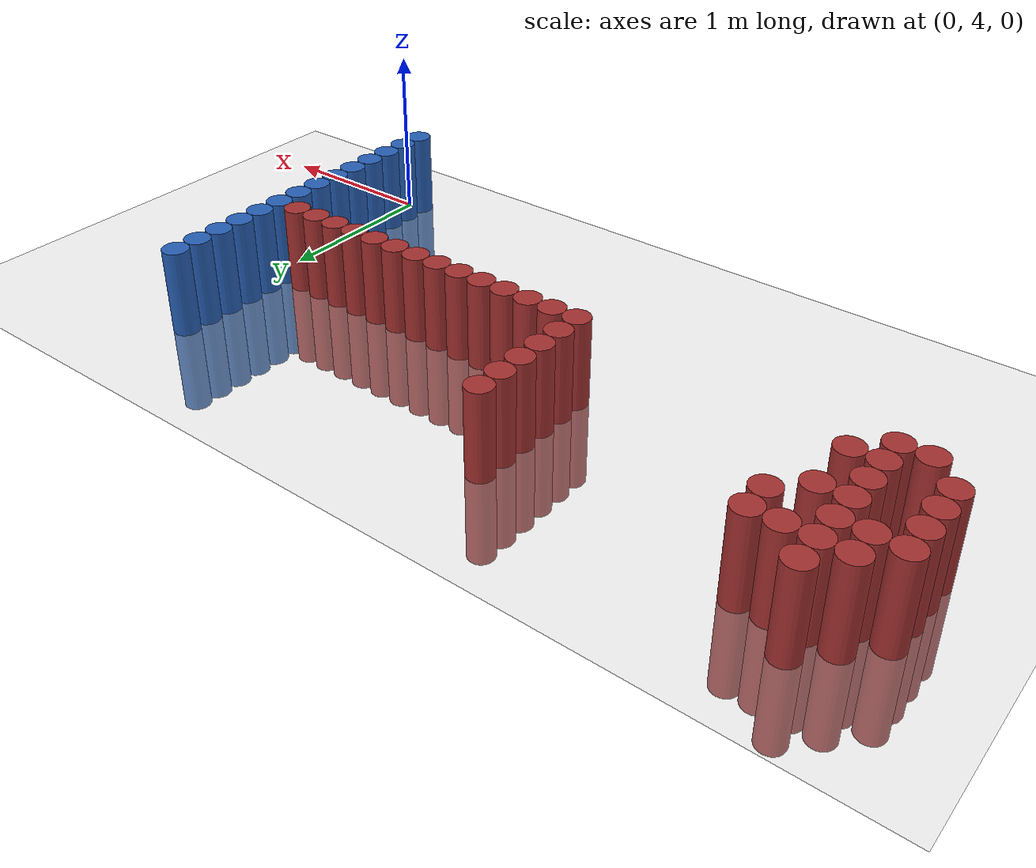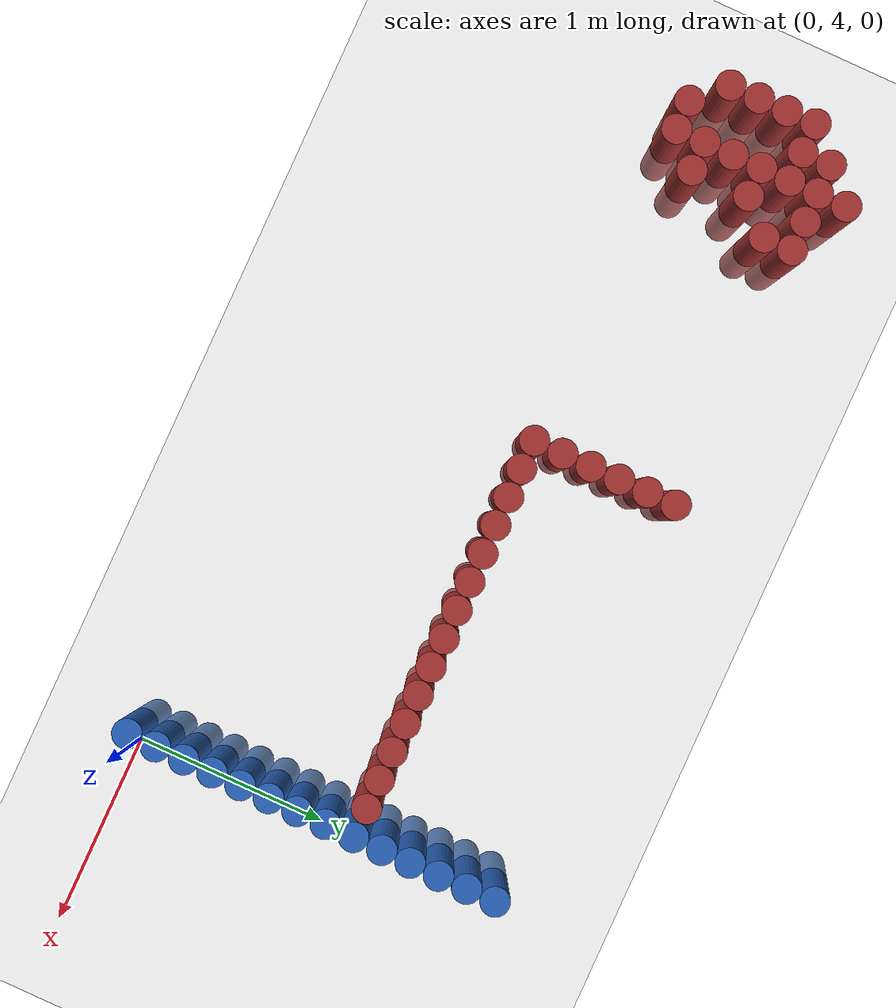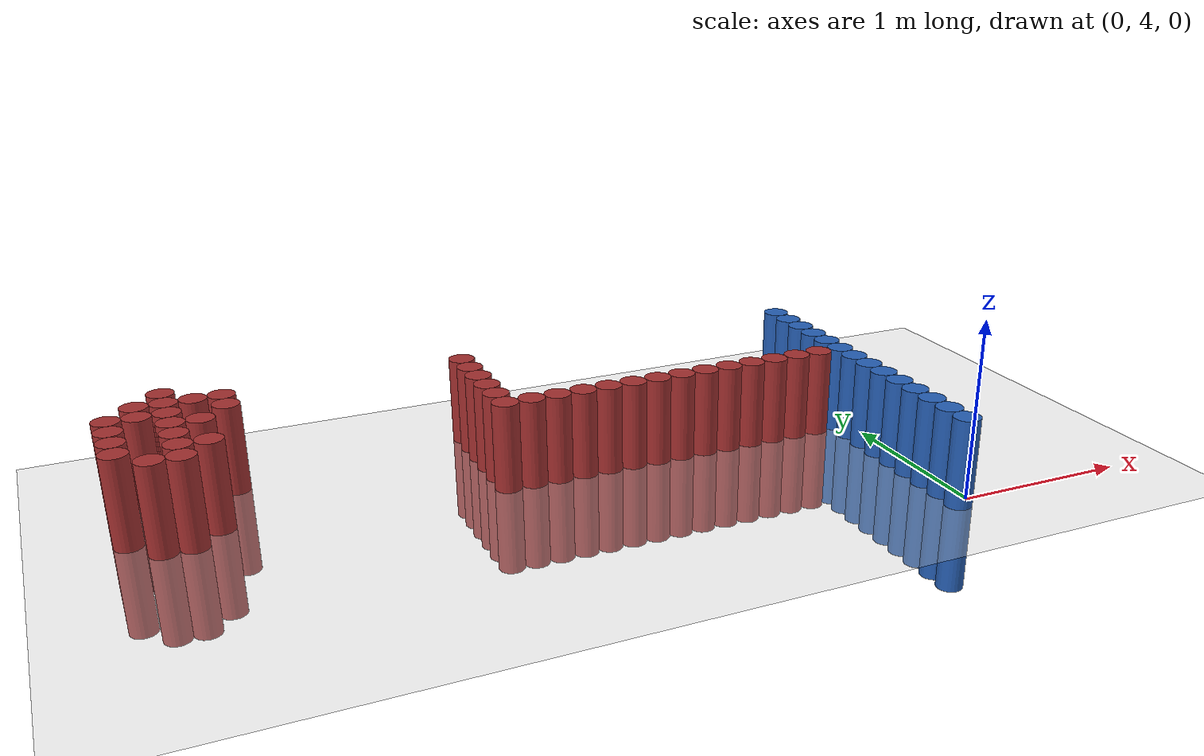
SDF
<sdf version="1.6">
 <world name="default">
  <model name="ground_plane">
   <static>1</static>
   <link name="link">
    <collision name="collision">
     <geometry><plane><normal>0 0 1</normal><size>100 100</size></plane></geometry>
     <surface><friction><ode><mu>100</mu><mu2>50</mu2></ode></friction></surface>
    </collision>
    <visual name="visual">
     <cast_shadows>0</cast_shadows>
     <geometry><plane><normal>0 0 1</normal><size>100 100</size></plane></geometry>
     <material>
      <script><uri>file://media/materials/scripts/gazebo.material</uri><name>Gazebo/Grey</name></script>
     </material>
    </visual>
   </link>
  </model>
  <model name="unit_cylinder_109">
   <static>1</static>
   <pose>-0.075000 3.975000 0.000000 0.000000 0.000000 0.000000</pose>
   <link name="link">
    <inertial>
     <mass>1</mass>
     <inertia><ixx>0.145833</ixx><ixy>0</ixy><ixz>0</ixz><iyy>0.145833</iyy><iyz>0</iyz><izz>0.125</izz></inertia>
    </inertial>
    <collision name="collision">
     <geometry><cylinder><radius>0.075000</radius><length>1</length></cylinder></geometry>
    </collision>
    <visual name="visual">
     <geometry><cylinder><radius>0.075000</radius><length>1</length></cylinder></geometry>
     <material>
      <ambient>0.152000 0.379000 0.720000 1</ambient>
      <diffuse>0.152000 0.379000 0.720000 1</diffuse>
     </material>
     <material>
      <script><name>Gazebo/Grey</name><uri>file://media/materials/scripts/gazebo.material</uri></script>
     </material>
    </visual>
   </link>
  </model>
  <model name="unit_cylinder_111">
   <static>1</static>
   <pose>-0.075000 4.125000 0.000000 0.000000 0.000000 0.000000</pose>
   <link name="link">
    <inertial>
     <mass>1</mass>
     <inertia><ixx>0.145833</ixx><ixy>0</ixy><ixz>0</ixz><iyy>0.145833</iyy><iyz>0</iyz><izz>0.125</izz></inertia>
    </inertial>
    <collision name="collision">
     <geometry><cylinder><radius>0.075000</radius><length>1</length></cylinder></geometry>
    </collision>
    <visual name="visual">
     <geometry><cylinder><radius>0.075000</radius><length>1</length></cylinder></geometry>
     <material>
      <ambient>0.152000 0.379000 0.720000 1</ambient>
      <diffuse>0.152000 0.379000 0.720000 1</diffuse>
     </material>
     <material>
      <script><name>Gazebo/Grey</name><uri>file://media/materials/scripts/gazebo.material</uri></script>
     </material>
    </visual>
   </link>
  </model>
  <model name="unit_cylinder_113">
   <static>1</static>
   <pose>-0.075000 4.275000 0.000000 0.000000 0.000000 0.000000</pose>
   <link name="link">
    <inertial>
     <mass>1</mass>
     <inertia><ixx>0.145833</ixx><ixy>0</ixy><ixz>0</ixz><iyy>0.145833</iyy><iyz>0</iyz><izz>0.125</izz></inertia>
    </inertial>
    <collision name="collision">
     <geometry><cylinder><radius>0.075000</radius><length>1</length></cylinder></geometry>
    </collision>
    <visual name="visual">
     <geometry><cylinder><radius>0.075000</radius><length>1</length></cylinder></geometry>
     <material>
      <ambient>0.152000 0.379000 0.720000 1</ambient>
      <diffuse>0.152000 0.379000 0.720000 1</diffuse>
     </material>
     <material>
      <script><name>Gazebo/Grey</name><uri>file://media/materials/scripts/gazebo.material</uri></script>
     </material>
    </visual>
   </link>
  </model>
  <model name="unit_cylinder_115">
   <static>1</static>
   <pose>-0.075000 4.425000 0.000000 0.000000 0.000000 0.000000</pose>
   <link name="link">
    <inertial>
     <mass>1</mass>
     <inertia><ixx>0.145833</ixx><ixy>0</ixy><ixz>0</ixz><iyy>0.145833</iyy><iyz>0</iyz><izz>0.125</izz></inertia>
    </inertial>
    <collision name="collision">
     <geometry><cylinder><radius>0.075000</radius><length>1</length></cylinder></geometry>
    </collision>
    <visual name="visual">
     <geometry><cylinder><radius>0.075000</radius><length>1</length></cylinder></geometry>
     <material>
      <ambient>0.152000 0.379000 0.720000 1</ambient>
      <diffuse>0.152000 0.379000 0.720000 1</diffuse>
     </material>
     <material>
      <script><name>Gazebo/Grey</name><uri>file://media/materials/scripts/gazebo.material</uri></script>
     </material>
    </visual>
   </link>
  </model>
  <model name="unit_cylinder_117">
   <static>1</static>
   <pose>-0.075000 4.575000 0.000000 0.000000 0.000000 0.000000</pose>
   <link name="link">
    <inertial>
     <mass>1</mass>
     <inertia><ixx>0.145833</ixx><ixy>0</ixy><ixz>0</ixz><iyy>0.145833</iyy><iyz>0</iyz><izz>0.125</izz></inertia>
    </inertial>
    <collision name="collision">
     <geometry><cylinder><radius>0.075000</radius><length>1</length></cylinder></geometry>
    </collision>
    <visual name="visual">
     <geometry><cylinder><radius>0.075000</radius><length>1</length></cylinder></geometry>
     <material>
      <ambient>0.152000 0.379000 0.720000 1</ambient>
      <diffuse>0.152000 0.379000 0.720000 1</diffuse>
     </material>
     <material>
      <script><name>Gazebo/Grey</name><uri>file://media/materials/scripts/gazebo.material</uri></script>
     </material>
    </visual>
   </link>
  </model>
  <model name="unit_cylinder_119">
   <static>1</static>
   <pose>-0.075000 4.725000 0.000000 0.000000 0.000000 0.000000</pose>
   <link name="link">
    <inertial>
     <mass>1</mass>
     <inertia><ixx>0.145833</ixx><ixy>0</ixy><ixz>0</ixz><iyy>0.145833</iyy><iyz>0</iyz><izz>0.125</izz></inertia>
    </inertial>
    <collision name="collision">
     <geometry><cylinder><radius>0.075000</radius><length>1</length></cylinder></geometry>
    </collision>
    <visual name="visual">
     <geometry><cylinder><radius>0.075000</radius><length>1</length></cylinder></geometry>
     <material>
      <ambient>0.152000 0.379000 0.720000 1</ambient>
      <diffuse>0.152000 0.379000 0.720000 1</diffuse>
     </material>
     <material>
      <script><name>Gazebo/Grey</name><uri>file://media/materials/scripts/gazebo.material</uri></script>
     </material>
    </visual>
   </link>
  </model>
  <model name="unit_cylinder_121">
   <static>1</static>
   <pose>-0.075000 4.875000 0.000000 0.000000 0.000000 0.000000</pose>
   <link name="link">
    <inertial>
     <mass>1</mass>
     <inertia><ixx>0.145833</ixx><ixy>0</ixy><ixz>0</ixz><iyy>0.145833</iyy><iyz>0</iyz><izz>0.125</izz></inertia>
    </inertial>
    <collision name="collision">
     <geometry><cylinder><radius>0.075000</radius><length>1</length></cylinder></geometry>
    </collision>
    <visual name="visual">
     <geometry><cylinder><radius>0.075000</radius><length>1</length></cylinder></geometry>
     <material>
      <ambient>0.152000 0.379000 0.720000 1</ambient>
      <diffuse>0.152000 0.379000 0.720000 1</diffuse>
     </material>
     <material>
      <script><name>Gazebo/Grey</name><uri>file://media/materials/scripts/gazebo.material</uri></script>
     </material>
    </visual>
   </link>
  </model>
  <model name="unit_cylinder_123">
   <static>1</static>
   <pose>-0.075000 5.025000 0.000000 0.000000 0.000000 0.000000</pose>
   <link name="link">
    <inertial>
     <mass>1</mass>
     <inertia><ixx>0.145833</ixx><ixy>0</ixy><ixz>0</ixz><iyy>0.145833</iyy><iyz>0</iyz><izz>0.125</izz></inertia>
    </inertial>
    <collision name="collision">
     <geometry><cylinder><radius>0.075000</radius><length>1</length></cylinder></geometry>
    </collision>
    <visual name="visual">
     <geometry><cylinder><radius>0.075000</radius><length>1</length></cylinder></geometry>
     <material>
      <ambient>0.152000 0.379000 0.720000 1</ambient>
      <diffuse>0.152000 0.379000 0.720000 1</diffuse>
     </material>
     <material>
      <script><name>Gazebo/Grey</name><uri>file://media/materials/scripts/gazebo.material</uri></script>
     </material>
    </visual>
   </link>
  </model>
  <model name="unit_cylinder_280">
   <static>1</static>
   <pose>-4.125000 5.325000 0.000000 0.000000 0.000000 0.000000</pose>
   <link name="link">
    <inertial>
     <mass>1</mass>
     <inertia><ixx>0.145833</ixx><ixy>0</ixy><ixz>0</ixz><iyy>0.145833</iyy><iyz>0</iyz><izz>0.125</izz></inertia>
    </inertial>
    <collision name="collision">
     <geometry><cylinder><radius>0.075000</radius><length>1</length></cylinder></geometry>
    </collision>
    <visual name="visual">
     <geometry><cylinder><radius>0.075000</radius><length>1</length></cylinder></geometry>
     <material>
      <ambient>0.648000 0.192000 0.192000 1</ambient>
      <diffuse>0.648000 0.192000 0.192000 1</diffuse>
     </material>
     <material>
      <script><name>Gazebo/Grey</name><uri>file://media/materials/scripts/gazebo.material</uri></script>
     </material>
    </visual>
   </link>
  </model>
  <model name="unit_cylinder_281">
   <static>1</static>
   <pose>-4.125000 5.475000 0.000000 0.000000 0.000000 0.000000</pose>
   <link name="link">
    <inertial>
     <mass>1</mass>
     <inertia><ixx>0.145833</ixx><ixy>0</ixy><ixz>0</ixz><iyy>0.145833</iyy><iyz>0</iyz><izz>0.125</izz></inertia>
    </inertial>
    <collision name="collision">
     <geometry><cylinder><radius>0.075000</radius><length>1</length></cylinder></geometry>
    </collision>
    <visual name="visual">
     <geometry><cylinder><radius>0.075000</radius><length>1</length></cylinder></geometry>
     <material>
      <ambient>0.648000 0.192000 0.192000 1</ambient>
      <diffuse>0.648000 0.192000 0.192000 1</diffuse>
     </material>
     <material>
      <script><name>Gazebo/Grey</name><uri>file://media/materials/scripts/gazebo.material</uri></script>
     </material>
    </visual>
   </link>
  </model>
  <model name="unit_cylinder_282">
   <static>1</static>
   <pose>-4.125000 5.625000 0.000000 0.000000 0.000000 0.000000</pose>
   <link name="link">
    <inertial>
     <mass>1</mass>
     <inertia><ixx>0.145833</ixx><ixy>0</ixy><ixz>0</ixz><iyy>0.145833</iyy><iyz>0</iyz><izz>0.125</izz></inertia>
    </inertial>
    <collision name="collision">
     <geometry><cylinder><radius>0.075000</radius><length>1</length></cylinder></geometry>
    </collision>
    <visual name="visual">
     <geometry><cylinder><radius>0.075000</radius><length>1</length></cylinder></geometry>
     <material>
      <ambient>0.648000 0.192000 0.192000 1</ambient>
      <diffuse>0.648000 0.192000 0.192000 1</diffuse>
     </material>
     <material>
      <script><name>Gazebo/Grey</name><uri>file://media/materials/scripts/gazebo.material</uri></script>
     </material>
    </visual>
   </link>
  </model>
  <model name="unit_cylinder_283">
   <static>1</static>
   <pose>-4.125000 5.775000 0.000000 0.000000 0.000000 0.000000</pose>
   <link name="link">
    <inertial>
     <mass>1</mass>
     <inertia><ixx>0.145833</ixx><ixy>0</ixy><ixz>0</ixz><iyy>0.145833</iyy><iyz>0</iyz><izz>0.125</izz></inertia>
    </inertial>
    <collision name="collision">
     <geometry><cylinder><radius>0.075000</radius><length>1</length></cylinder></geometry>
    </collision>
    <visual name="visual">
     <geometry><cylinder><radius>0.075000</radius><length>1</length></cylinder></geometry>
     <material>
      <ambient>0.648000 0.192000 0.192000 1</ambient>
      <diffuse>0.648000 0.192000 0.192000 1</diffuse>
     </material>
     <material>
      <script><name>Gazebo/Grey</name><uri>file://media/materials/scripts/gazebo.material</uri></script>
     </material>
    </visual>
   </link>
  </model>
  <model name="unit_cylinder_284">
   <static>1</static>
   <pose>-3.975000 5.175000 0.000000 0.000000 0.000000 0.000000</pose>
   <link name="link">
    <inertial>
     <mass>1</mass>
     <inertia><ixx>0.145833</ixx><ixy>0</ixy><ixz>0</ixz><iyy>0.145833</iyy><iyz>0</iyz><izz>0.125</izz></inertia>
    </inertial>
    <collision name="collision">
     <geometry><cylinder><radius>0.075000</radius><length>1</length></cylinder></geometry>
    </collision>
    <visual name="visual">
     <geometry><cylinder><radius>0.075000</radius><length>1</length></cylinder></geometry>
     <material>
      <ambient>0.648000 0.192000 0.192000 1</ambient>
      <diffuse>0.648000 0.192000 0.192000 1</diffuse>
     </material>
     <material>
      <script><name>Gazebo/Grey</name><uri>file://media/materials/scripts/gazebo.material</uri></script>
     </material>
    </visual>
   </link>
  </model>
  <model name="unit_cylinder_285">
   <static>1</static>
   <pose>-3.975000 5.775000 0.000000 0.000000 0.000000 0.000000</pose>
   <link name="link">
    <inertial>
     <mass>1</mass>
     <inertia><ixx>0.145833</ixx><ixy>0</ixy><ixz>0</ixz><iyy>0.145833</iyy><iyz>0</iyz><izz>0.125</izz></inertia>
    </inertial>
    <collision name="collision">
     <geometry><cylinder><radius>0.075000</radius><length>1</length></cylinder></geometry>
    </collision>
    <visual name="visual">
     <geometry><cylinder><radius>0.075000</radius><length>1</length></cylinder></geometry>
     <material>
      <ambient>0.648000 0.192000 0.192000 1</ambient>
      <diffuse>0.648000 0.192000 0.192000 1</diffuse>
     </material>
     <material>
      <script><name>Gazebo/Grey</name><uri>file://media/materials/scripts/gazebo.material</uri></script>
     </material>
    </visual>
   </link>
  </model>
  <model name="unit_cylinder_286">
   <static>1</static>
   <pose>-3.975000 5.925000 0.000000 0.000000 0.000000 0.000000</pose>
   <link name="link">
    <inertial>
     <mass>1</mass>
     <inertia><ixx>0.145833</ixx><ixy>0</ixy><ixz>0</ixz><iyy>0.145833</iyy><iyz>0</iyz><izz>0.125</izz></inertia>
    </inertial>
    <collision name="collision">
     <geometry><cylinder><radius>0.075000</radius><length>1</length></cylinder></geometry>
    </collision>
    <visual name="visual">
     <geometry><cylinder><radius>0.075000</radius><length>1</length></cylinder></geometry>
     <material>
      <ambient>0.648000 0.192000 0.192000 1</ambient>
      <diffuse>0.648000 0.192000 0.192000 1</diffuse>
     </material>
     <material>
      <script><name>Gazebo/Grey</name><uri>file://media/materials/scripts/gazebo.material</uri></script>
     </material>
    </visual>
   </link>
  </model>
  <model name="unit_cylinder_296">
   <static>1</static>
   <pose>-3.825000 5.175000 0.000000 0.000000 0.000000 0.000000</pose>
   <link name="link">
    <inertial>
     <mass>1</mass>
     <inertia><ixx>0.145833</ixx><ixy>0</ixy><ixz>0</ixz><iyy>0.145833</iyy><iyz>0</iyz><izz>0.125</izz></inertia>
    </inertial>
    <collision name="collision">
     <geometry><cylinder><radius>0.075000</radius><length>1</length></cylinder></geometry>
    </collision>
    <visual name="visual">
     <geometry><cylinder><radius>0.075000</radius><length>1</length></cylinder></geometry>
     <material>
      <ambient>0.648000 0.192000 0.192000 1</ambient>
      <diffuse>0.648000 0.192000 0.192000 1</diffuse>
     </material>
     <material>
      <script><name>Gazebo/Grey</name><uri>file://media/materials/scripts/gazebo.material</uri></script>
     </material>
    </visual>
   </link>
  </model>
  <model name="unit_cylinder_297">
   <static>1</static>
   <pose>-3.825000 5.325000 0.000000 0.000000 0.000000 0.000000</pose>
   <link name="link">
    <inertial>
     <mass>1</mass>
     <inertia><ixx>0.145833</ixx><ixy>0</ixy><ixz>0</ixz><iyy>0.145833</iyy><iyz>0</iyz><izz>0.125</izz></inertia>
    </inertial>
    <collision name="collision">
     <geometry><cylinder><radius>0.075000</radius><length>1</length></cylinder></geometry>
    </collision>
    <visual name="visual">
     <geometry><cylinder><radius>0.075000</radius><length>1</length></cylinder></geometry>
     <material>
      <ambient>0.648000 0.192000 0.192000 1</ambient>
      <diffuse>0.648000 0.192000 0.192000 1</diffuse>
     </material>
     <material>
      <script><name>Gazebo/Grey</name><uri>file://media/materials/scripts/gazebo.material</uri></script>
     </material>
    </visual>
   </link>
  </model>
  <model name="unit_cylinder_298">
   <static>1</static>
   <pose>-3.825000 5.475000 0.000000 0.000000 0.000000 0.000000</pose>
   <link name="link">
    <inertial>
     <mass>1</mass>
     <inertia><ixx>0.145833</ixx><ixy>0</ixy><ixz>0</ixz><iyy>0.145833</iyy><iyz>0</iyz><izz>0.125</izz></inertia>
    </inertial>
    <collision name="collision">
     <geometry><cylinder><radius>0.075000</radius><length>1</length></cylinder></geometry>
    </collision>
    <visual name="visual">
     <geometry><cylinder><radius>0.075000</radius><length>1</length></cylinder></geometry>
     <material>
      <ambient>0.648000 0.192000 0.192000 1</ambient>
      <diffuse>0.648000 0.192000 0.192000 1</diffuse>
     </material>
     <material>
      <script><name>Gazebo/Grey</name><uri>file://media/materials/scripts/gazebo.material</uri></script>
     </material>
    </visual>
   </link>
  </model>
  <model name="unit_cylinder_299">
   <static>1</static>
   <pose>-3.825000 5.625000 0.000000 0.000000 0.000000 0.000000</pose>
   <link name="link">
    <inertial>
     <mass>1</mass>
     <inertia><ixx>0.145833</ixx><ixy>0</ixy><ixz>0</ixz><iyy>0.145833</iyy><iyz>0</iyz><izz>0.125</izz></inertia>
    </inertial>
    <collision name="collision">
     <geometry><cylinder><radius>0.075000</radius><length>1</length></cylinder></geometry>
    </collision>
    <visual name="visual">
     <geometry><cylinder><radius>0.075000</radius><length>1</length></cylinder></geometry>
     <material>
      <ambient>0.648000 0.192000 0.192000 1</ambient>
      <diffuse>0.648000 0.192000 0.192000 1</diffuse>
     </material>
     <material>
      <script><name>Gazebo/Grey</name><uri>file://media/materials/scripts/gazebo.material</uri></script>
     </material>
    </visual>
   </link>
  </model>
  <model name="unit_cylinder_300">
   <static>1</static>
   <pose>-3.825000 5.775000 0.000000 0.000000 0.000000 0.000000</pose>
   <link name="link">
    <inertial>
     <mass>1</mass>
     <inertia><ixx>0.145833</ixx><ixy>0</ixy><ixz>0</ixz><iyy>0.145833</iyy><iyz>0</iyz><izz>0.125</izz></inertia>
    </inertial>
    <collision name="collision">
     <geometry><cylinder><radius>0.075000</radius><length>1</length></cylinder></geometry>
    </collision>
    <visual name="visual">
     <geometry><cylinder><radius>0.075000</radius><length>1</length></cylinder></geometry>
     <material>
      <ambient>0.648000 0.192000 0.192000 1</ambient>
      <diffuse>0.648000 0.192000 0.192000 1</diffuse>
     </material>
     <material>
      <script><name>Gazebo/Grey</name><uri>file://media/materials/scripts/gazebo.material</uri></script>
     </material>
    </visual>
   </link>
  </model>
  <model name="unit_cylinder_301">
   <static>1</static>
   <pose>-3.825000 5.925000 0.000000 0.000000 0.000000 0.000000</pose>
   <link name="link">
    <inertial>
     <mass>1</mass>
     <inertia><ixx>0.145833</ixx><ixy>0</ixy><ixz>0</ixz><iyy>0.145833</iyy><iyz>0</iyz><izz>0.125</izz></inertia>
    </inertial>
    <collision name="collision">
     <geometry><cylinder><radius>0.075000</radius><length>1</length></cylinder></geometry>
    </collision>
    <visual name="visual">
     <geometry><cylinder><radius>0.075000</radius><length>1</length></cylinder></geometry>
     <material>
      <ambient>0.648000 0.192000 0.192000 1</ambient>
      <diffuse>0.648000 0.192000 0.192000 1</diffuse>
     </material>
     <material>
      <script><name>Gazebo/Grey</name><uri>file://media/materials/scripts/gazebo.material</uri></script>
     </material>
    </visual>
   </link>
  </model>
  <model name="unit_cylinder_302">
   <static>1</static>
   <pose>-3.825000 6.075000 0.000000 0.000000 0.000000 0.000000</pose>
   <link name="link">
    <inertial>
     <mass>1</mass>
     <inertia><ixx>0.145833</ixx><ixy>0</ixy><ixz>0</ixz><iyy>0.145833</iyy><iyz>0</iyz><izz>0.125</izz></inertia>
    </inertial>
    <collision name="collision">
     <geometry><cylinder><radius>0.075000</radius><length>1</length></cylinder></geometry>
    </collision>
    <visual name="visual">
     <geometry><cylinder><radius>0.075000</radius><length>1</length></cylinder></geometry>
     <material>
      <ambient>0.648000 0.192000 0.192000 1</ambient>
      <diffuse>0.648000 0.192000 0.192000 1</diffuse>
     </material>
     <material>
      <script><name>Gazebo/Grey</name><uri>file://media/materials/scripts/gazebo.material</uri></script>
     </material>
    </visual>
   </link>
  </model>
  <model name="unit_cylinder_307">
   <static>1</static>
   <pose>-3.675000 5.325000 0.000000 0.000000 0.000000 0.000000</pose>
   <link name="link">
    <inertial>
     <mass>1</mass>
     <inertia><ixx>0.145833</ixx><ixy>0</ixy><ixz>0</ixz><iyy>0.145833</iyy><iyz>0</iyz><izz>0.125</izz></inertia>
    </inertial>
    <collision name="collision">
     <geometry><cylinder><radius>0.075000</radius><length>1</length></cylinder></geometry>
    </collision>
    <visual name="visual">
     <geometry><cylinder><radius>0.075000</radius><length>1</length></cylinder></geometry>
     <material>
      <ambient>0.648000 0.192000 0.192000 1</ambient>
      <diffuse>0.648000 0.192000 0.192000 1</diffuse>
     </material>
     <material>
      <script><name>Gazebo/Grey</name><uri>file://media/materials/scripts/gazebo.material</uri></script>
     </material>
    </visual>
   </link>
  </model>
  <model name="unit_cylinder_308">
   <static>1</static>
   <pose>-3.675000 5.625000 0.000000 0.000000 0.000000 0.000000</pose>
   <link name="link">
    <inertial>
     <mass>1</mass>
     <inertia><ixx>0.145833</ixx><ixy>0</ixy><ixz>0</ixz><iyy>0.145833</iyy><iyz>0</iyz><izz>0.125</izz></inertia>
    </inertial>
    <collision name="collision">
     <geometry><cylinder><radius>0.075000</radius><length>1</length></cylinder></geometry>
    </collision>
    <visual name="visual">
     <geometry><cylinder><radius>0.075000</radius><length>1</length></cylinder></geometry>
     <material>
      <ambient>0.648000 0.192000 0.192000 1</ambient>
      <diffuse>0.648000 0.192000 0.192000 1</diffuse>
     </material>
     <material>
      <script><name>Gazebo/Grey</name><uri>file://media/materials/scripts/gazebo.material</uri></script>
     </material>
    </visual>
   </link>
  </model>
  <model name="unit_cylinder_309">
   <static>1</static>
   <pose>-3.675000 5.925000 0.000000 0.000000 0.000000 0.000000</pose>
   <link name="link">
    <inertial>
     <mass>1</mass>
     <inertia><ixx>0.145833</ixx><ixy>0</ixy><ixz>0</ixz><iyy>0.145833</iyy><iyz>0</iyz><izz>0.125</izz></inertia>
    </inertial>
    <collision name="collision">
     <geometry><cylinder><radius>0.075000</radius><length>1</length></cylinder></geometry>
    </collision>
    <visual name="visual">
     <geometry><cylinder><radius>0.075000</radius><length>1</length></cylinder></geometry>
     <material>
      <ambient>0.648000 0.192000 0.192000 1</ambient>
      <diffuse>0.648000 0.192000 0.192000 1</diffuse>
     </material>
     <material>
      <script><name>Gazebo/Grey</name><uri>file://media/materials/scripts/gazebo.material</uri></script>
     </material>
    </visual>
   </link>
  </model>
  <model name="unit_cylinder_313">
   <static>1</static>
   <pose>-3.525000 5.775000 0.000000 0.000000 0.000000 0.000000</pose>
   <link name="link">
    <inertial>
     <mass>1</mass>
     <inertia><ixx>0.145833</ixx><ixy>0</ixy><ixz>0</ixz><iyy>0.145833</iyy><iyz>0</iyz><izz>0.125</izz></inertia>
    </inertial>
    <collision name="collision">
     <geometry><cylinder><radius>0.075000</radius><length>1</length></cylinder></geometry>
    </collision>
    <visual name="visual">
     <geometry><cylinder><radius>0.075000</radius><length>1</length></cylinder></geometry>
     <material>
      <ambient>0.648000 0.192000 0.192000 1</ambient>
      <diffuse>0.648000 0.192000 0.192000 1</diffuse>
     </material>
     <material>
      <script><name>Gazebo/Grey</name><uri>file://media/materials/scripts/gazebo.material</uri></script>
     </material>
    </visual>
   </link>
  </model>
  <model name="unit_cylinder_314">
   <static>1</static>
   <pose>-3.525000 5.925000 0.000000 0.000000 0.000000 0.000000</pose>
   <link name="link">
    <inertial>
     <mass>1</mass>
     <inertia><ixx>0.145833</ixx><ixy>0</ixy><ixz>0</ixz><iyy>0.145833</iyy><iyz>0</iyz><izz>0.125</izz></inertia>
    </inertial>
    <collision name="collision">
     <geometry><cylinder><radius>0.075000</radius><length>1</length></cylinder></geometry>
    </collision>
    <visual name="visual">
     <geometry><cylinder><radius>0.075000</radius><length>1</length></cylinder></geometry>
     <material>
      <ambient>0.648000 0.192000 0.192000 1</ambient>
      <diffuse>0.648000 0.192000 0.192000 1</diffuse>
     </material>
     <material>
      <script><name>Gazebo/Grey</name><uri>file://media/materials/scripts/gazebo.material</uri></script>
     </material>
    </visual>
   </link>
  </model>
  <model name="unit_cylinder_342">
   <static>1</static>
   <pose>-2.175000 5.175000 0.000000 0.000000 0.000000 0.000000</pose>
   <link name="link">
    <inertial>
     <mass>1</mass>
     <inertia><ixx>0.145833</ixx><ixy>0</ixy><ixz>0</ixz><iyy>0.145833</iyy><iyz>0</iyz><izz>0.125</izz></inertia>
    </inertial>
    <collision name="collision">
     <geometry><cylinder><radius>0.075000</radius><length>1</length></cylinder></geometry>
    </collision>
    <visual name="visual">
     <geometry><cylinder><radius>0.075000</radius><length>1</length></cylinder></geometry>
     <material>
      <ambient>0.648000 0.192000 0.192000 1</ambient>
      <diffuse>0.648000 0.192000 0.192000 1</diffuse>
     </material>
     <material>
      <script><name>Gazebo/Grey</name><uri>file://media/materials/scripts/gazebo.material</uri></script>
     </material>
    </visual>
   </link>
  </model>
  <model name="unit_cylinder_343">
   <static>1</static>
   <pose>-2.175000 5.325000 0.000000 0.000000 0.000000 0.000000</pose>
   <link name="link">
    <inertial>
     <mass>1</mass>
     <inertia><ixx>0.145833</ixx><ixy>0</ixy><ixz>0</ixz><iyy>0.145833</iyy><iyz>0</iyz><izz>0.125</izz></inertia>
    </inertial>
    <collision name="collision">
     <geometry><cylinder><radius>0.075000</radius><length>1</length></cylinder></geometry>
    </collision>
    <visual name="visual">
     <geometry><cylinder><radius>0.075000</radius><length>1</length></cylinder></geometry>
     <material>
      <ambient>0.648000 0.192000 0.192000 1</ambient>
      <diffuse>0.648000 0.192000 0.192000 1</diffuse>
     </material>
     <material>
      <script><name>Gazebo/Grey</name><uri>file://media/materials/scripts/gazebo.material</uri></script>
     </material>
    </visual>
   </link>
  </model>
  <model name="unit_cylinder_344">
   <static>1</static>
   <pose>-2.175000 5.475000 0.000000 0.000000 0.000000 0.000000</pose>
   <link name="link">
    <inertial>
     <mass>1</mass>
     <inertia><ixx>0.145833</ixx><ixy>0</ixy><ixz>0</ixz><iyy>0.145833</iyy><iyz>0</iyz><izz>0.125</izz></inertia>
    </inertial>
    <collision name="collision">
     <geometry><cylinder><radius>0.075000</radius><length>1</length></cylinder></geometry>
    </collision>
    <visual name="visual">
     <geometry><cylinder><radius>0.075000</radius><length>1</length></cylinder></geometry>
     <material>
      <ambient>0.648000 0.192000 0.192000 1</ambient>
      <diffuse>0.648000 0.192000 0.192000 1</diffuse>
     </material>
     <material>
      <script><name>Gazebo/Grey</name><uri>file://media/materials/scripts/gazebo.material</uri></script>
     </material>
    </visual>
   </link>
  </model>
  <model name="unit_cylinder_345">
   <static>1</static>
   <pose>-2.175000 5.625000 0.000000 0.000000 0.000000 0.000000</pose>
   <link name="link">
    <inertial>
     <mass>1</mass>
     <inertia><ixx>0.145833</ixx><ixy>0</ixy><ixz>0</ixz><iyy>0.145833</iyy><iyz>0</iyz><izz>0.125</izz></inertia>
    </inertial>
    <collision name="collision">
     <geometry><cylinder><radius>0.075000</radius><length>1</length></cylinder></geometry>
    </collision>
    <visual name="visual">
     <geometry><cylinder><radius>0.075000</radius><length>1</length></cylinder></geometry>
     <material>
      <ambient>0.648000 0.192000 0.192000 1</ambient>
      <diffuse>0.648000 0.192000 0.192000 1</diffuse>
     </material>
     <material>
      <script><name>Gazebo/Grey</name><uri>file://media/materials/scripts/gazebo.material</uri></script>
     </material>
    </visual>
   </link>
  </model>
  <model name="unit_cylinder_346">
   <static>1</static>
   <pose>-2.175000 5.775000 0.000000 0.000000 0.000000 0.000000</pose>
   <link name="link">
    <inertial>
     <mass>1</mass>
     <inertia><ixx>0.145833</ixx><ixy>0</ixy><ixz>0</ixz><iyy>0.145833</iyy><iyz>0</iyz><izz>0.125</izz></inertia>
    </inertial>
    <collision name="collision">
     <geometry><cylinder><radius>0.075000</radius><length>1</length></cylinder></geometry>
    </collision>
    <visual name="visual">
     <geometry><cylinder><radius>0.075000</radius><length>1</length></cylinder></geometry>
     <material>
      <ambient>0.648000 0.192000 0.192000 1</ambient>
      <diffuse>0.648000 0.192000 0.192000 1</diffuse>
     </material>
     <material>
      <script><name>Gazebo/Grey</name><uri>file://media/materials/scripts/gazebo.material</uri></script>
     </material>
    </visual>
   </link>
  </model>
  <model name="unit_cylinder_347">
   <static>1</static>
   <pose>-2.175000 5.925000 0.000000 0.000000 0.000000 0.000000</pose>
   <link name="link">
    <inertial>
     <mass>1</mass>
     <inertia><ixx>0.145833</ixx><ixy>0</ixy><ixz>0</ixz><iyy>0.145833</iyy><iyz>0</iyz><izz>0.125</izz></inertia>
    </inertial>
    <collision name="collision">
     <geometry><cylinder><radius>0.075000</radius><length>1</length></cylinder></geometry>
    </collision>
    <visual name="visual">
     <geometry><cylinder><radius>0.075000</radius><length>1</length></cylinder></geometry>
     <material>
      <ambient>0.648000 0.192000 0.192000 1</ambient>
      <diffuse>0.648000 0.192000 0.192000 1</diffuse>
     </material>
     <material>
      <script><name>Gazebo/Grey</name><uri>file://media/materials/scripts/gazebo.material</uri></script>
     </material>
    </visual>
   </link>
  </model>
  <model name="unit_cylinder_359">
   <static>1</static>
   <pose>-2.025000 5.175000 0.000000 0.000000 0.000000 0.000000</pose>
   <link name="link">
    <inertial>
     <mass>1</mass>
     <inertia><ixx>0.145833</ixx><ixy>0</ixy><ixz>0</ixz><iyy>0.145833</iyy><iyz>0</iyz><izz>0.125</izz></inertia>
    </inertial>
    <collision name="collision">
     <geometry><cylinder><radius>0.075000</radius><length>1</length></cylinder></geometry>
    </collision>
    <visual name="visual">
     <geometry><cylinder><radius>0.075000</radius><length>1</length></cylinder></geometry>
     <material>
      <ambient>0.648000 0.192000 0.192000 1</ambient>
      <diffuse>0.648000 0.192000 0.192000 1</diffuse>
     </material>
     <material>
      <script><name>Gazebo/Grey</name><uri>file://media/materials/scripts/gazebo.material</uri></script>
     </material>
    </visual>
   </link>
  </model>
  <model name="unit_cylinder_361">
   <static>1</static>
   <pose>-1.875000 5.175000 0.000000 0.000000 0.000000 0.000000</pose>
   <link name="link">
    <inertial>
     <mass>1</mass>
     <inertia><ixx>0.145833</ixx><ixy>0</ixy><ixz>0</ixz><iyy>0.145833</iyy><iyz>0</iyz><izz>0.125</izz></inertia>
    </inertial>
    <collision name="collision">
     <geometry><cylinder><radius>0.075000</radius><length>1</length></cylinder></geometry>
    </collision>
    <visual name="visual">
     <geometry><cylinder><radius>0.075000</radius><length>1</length></cylinder></geometry>
     <material>
      <ambient>0.648000 0.192000 0.192000 1</ambient>
      <diffuse>0.648000 0.192000 0.192000 1</diffuse>
     </material>
     <material>
      <script><name>Gazebo/Grey</name><uri>file://media/materials/scripts/gazebo.material</uri></script>
     </material>
    </visual>
   </link>
  </model>
  <model name="unit_cylinder_363">
   <static>1</static>
   <pose>-1.725000 5.175000 0.000000 0.000000 0.000000 0.000000</pose>
   <link name="link">
    <inertial>
     <mass>1</mass>
     <inertia><ixx>0.145833</ixx><ixy>0</ixy><ixz>0</ixz><iyy>0.145833</iyy><iyz>0</iyz><izz>0.125</izz></inertia>
    </inertial>
    <collision name="collision">
     <geometry><cylinder><radius>0.075000</radius><length>1</length></cylinder></geometry>
    </collision>
    <visual name="visual">
     <geometry><cylinder><radius>0.075000</radius><length>1</length></cylinder></geometry>
     <material>
      <ambient>0.648000 0.192000 0.192000 1</ambient>
      <diffuse>0.648000 0.192000 0.192000 1</diffuse>
     </material>
     <material>
      <script><name>Gazebo/Grey</name><uri>file://media/materials/scripts/gazebo.material</uri></script>
     </material>
    </visual>
   </link>
  </model>
  <model name="unit_cylinder_365">
   <static>1</static>
   <pose>-1.575000 5.175000 0.000000 0.000000 0.000000 0.000000</pose>
   <link name="link">
    <inertial>
     <mass>1</mass>
     <inertia><ixx>0.145833</ixx><ixy>0</ixy><ixz>0</ixz><iyy>0.145833</iyy><iyz>0</iyz><izz>0.125</izz></inertia>
    </inertial>
    <collision name="collision">
     <geometry><cylinder><radius>0.075000</radius><length>1</length></cylinder></geometry>
    </collision>
    <visual name="visual">
     <geometry><cylinder><radius>0.075000</radius><length>1</length></cylinder></geometry>
     <material>
      <ambient>0.648000 0.192000 0.192000 1</ambient>
      <diffuse>0.648000 0.192000 0.192000 1</diffuse>
     </material>
     <material>
      <script><name>Gazebo/Grey</name><uri>file://media/materials/scripts/gazebo.material</uri></script>
     </material>
    </visual>
   </link>
  </model>
  <model name="unit_cylinder_367">
   <static>1</static>
   <pose>-1.425000 5.175000 0.000000 0.000000 0.000000 0.000000</pose>
   <link name="link">
    <inertial>
     <mass>1</mass>
     <inertia><ixx>0.145833</ixx><ixy>0</ixy><ixz>0</ixz><iyy>0.145833</iyy><iyz>0</iyz><izz>0.125</izz></inertia>
    </inertial>
    <collision name="collision">
     <geometry><cylinder><radius>0.075000</radius><length>1</length></cylinder></geometry>
    </collision>
    <visual name="visual">
     <geometry><cylinder><radius>0.075000</radius><length>1</length></cylinder></geometry>
     <material>
      <ambient>0.648000 0.192000 0.192000 1</ambient>
      <diffuse>0.648000 0.192000 0.192000 1</diffuse>
     </material>
     <material>
      <script><name>Gazebo/Grey</name><uri>file://media/materials/scripts/gazebo.material</uri></script>
     </material>
    </visual>
   </link>
  </model>
  <model name="unit_cylinder_369">
   <static>1</static>
   <pose>-1.275000 5.175000 0.000000 0.000000 0.000000 0.000000</pose>
   <link name="link">
    <inertial>
     <mass>1</mass>
     <inertia><ixx>0.145833</ixx><ixy>0</ixy><ixz>0</ixz><iyy>0.145833</iyy><iyz>0</iyz><izz>0.125</izz></inertia>
    </inertial>
    <collision name="collision">
     <geometry><cylinder><radius>0.075000</radius><length>1</length></cylinder></geometry>
    </collision>
    <visual name="visual">
     <geometry><cylinder><radius>0.075000</radius><length>1</length></cylinder></geometry>
     <material>
      <ambient>0.648000 0.192000 0.192000 1</ambient>
      <diffuse>0.648000 0.192000 0.192000 1</diffuse>
     </material>
     <material>
      <script><name>Gazebo/Grey</name><uri>file://media/materials/scripts/gazebo.material</uri></script>
     </material>
    </visual>
   </link>
  </model>
  <model name="unit_cylinder_371">
   <static>1</static>
   <pose>-1.125000 5.175000 0.000000 0.000000 0.000000 0.000000</pose>
   <link name="link">
    <inertial>
     <mass>1</mass>
     <inertia><ixx>0.145833</ixx><ixy>0</ixy><ixz>0</ixz><iyy>0.145833</iyy><iyz>0</iyz><izz>0.125</izz></inertia>
    </inertial>
    <collision name="collision">
     <geometry><cylinder><radius>0.075000</radius><length>1</length></cylinder></geometry>
    </collision>
    <visual name="visual">
     <geometry><cylinder><radius>0.075000</radius><length>1</length></cylinder></geometry>
     <material>
      <ambient>0.648000 0.192000 0.192000 1</ambient>
      <diffuse>0.648000 0.192000 0.192000 1</diffuse>
     </material>
     <material>
      <script><name>Gazebo/Grey</name><uri>file://media/materials/scripts/gazebo.material</uri></script>
     </material>
    </visual>
   </link>
  </model>
  <model name="unit_cylinder_373">
   <static>1</static>
   <pose>-0.975000 5.175000 0.000000 0.000000 0.000000 0.000000</pose>
   <link name="link">
    <inertial>
     <mass>1</mass>
     <inertia><ixx>0.145833</ixx><ixy>0</ixy><ixz>0</ixz><iyy>0.145833</iyy><iyz>0</iyz><izz>0.125</izz></inertia>
    </inertial>
    <collision name="collision">
     <geometry><cylinder><radius>0.075000</radius><length>1</length></cylinder></geometry>
    </collision>
    <visual name="visual">
     <geometry><cylinder><radius>0.075000</radius><length>1</length></cylinder></geometry>
     <material>
      <ambient>0.648000 0.192000 0.192000 1</ambient>
      <diffuse>0.648000 0.192000 0.192000 1</diffuse>
     </material>
     <material>
      <script><name>Gazebo/Grey</name><uri>file://media/materials/scripts/gazebo.material</uri></script>
     </material>
    </visual>
   </link>
  </model>
  <model name="unit_cylinder_375">
   <static>1</static>
   <pose>-0.825000 5.175000 0.000000 0.000000 0.000000 0.000000</pose>
   <link name="link">
    <inertial>
     <mass>1</mass>
     <inertia><ixx>0.145833</ixx><ixy>0</ixy><ixz>0</ixz><iyy>0.145833</iyy><iyz>0</iyz><izz>0.125</izz></inertia>
    </inertial>
    <collision name="collision">
     <geometry><cylinder><radius>0.075000</radius><length>1</length></cylinder></geometry>
    </collision>
    <visual name="visual">
     <geometry><cylinder><radius>0.075000</radius><length>1</length></cylinder></geometry>
     <material>
      <ambient>0.648000 0.192000 0.192000 1</ambient>
      <diffuse>0.648000 0.192000 0.192000 1</diffuse>
     </material>
     <material>
      <script><name>Gazebo/Grey</name><uri>file://media/materials/scripts/gazebo.material</uri></script>
     </material>
    </visual>
   </link>
  </model>
  <model name="unit_cylinder_377">
   <static>1</static>
   <pose>-0.675000 5.175000 0.000000 0.000000 0.000000 0.000000</pose>
   <link name="link">
    <inertial>
     <mass>1</mass>
     <inertia><ixx>0.145833</ixx><ixy>0</ixy><ixz>0</ixz><iyy>0.145833</iyy><iyz>0</iyz><izz>0.125</izz></inertia>
    </inertial>
    <collision name="collision">
     <geometry><cylinder><radius>0.075000</radius><length>1</length></cylinder></geometry>
    </collision>
    <visual name="visual">
     <geometry><cylinder><radius>0.075000</radius><length>1</length></cylinder></geometry>
     <material>
      <ambient>0.648000 0.192000 0.192000 1</ambient>
      <diffuse>0.648000 0.192000 0.192000 1</diffuse>
     </material>
     <material>
      <script><name>Gazebo/Grey</name><uri>file://media/materials/scripts/gazebo.material</uri></script>
     </material>
    </visual>
   </link>
  </model>
  <model name="unit_cylinder_379">
   <static>1</static>
   <pose>-0.525000 5.175000 0.000000 0.000000 0.000000 0.000000</pose>
   <link name="link">
    <inertial>
     <mass>1</mass>
     <inertia><ixx>0.145833</ixx><ixy>0</ixy><ixz>0</ixz><iyy>0.145833</iyy><iyz>0</iyz><izz>0.125</izz></inertia>
    </inertial>
    <collision name="collision">
     <geometry><cylinder><radius>0.075000</radius><length>1</length></cylinder></geometry>
    </collision>
    <visual name="visual">
     <geometry><cylinder><radius>0.075000</radius><length>1</length></cylinder></geometry>
     <material>
      <ambient>0.648000 0.192000 0.192000 1</ambient>
      <diffuse>0.648000 0.192000 0.192000 1</diffuse>
     </material>
     <material>
      <script><name>Gazebo/Grey</name><uri>file://media/materials/scripts/gazebo.material</uri></script>
     </material>
    </visual>
   </link>
  </model>
  <model name="unit_cylinder_381">
   <static>1</static>
   <pose>-0.375000 5.175000 0.000000 0.000000 0.000000 0.000000</pose>
   <link name="link">
    <inertial>
     <mass>1</mass>
     <inertia><ixx>0.145833</ixx><ixy>0</ixy><ixz>0</ixz><iyy>0.145833</iyy><iyz>0</iyz><izz>0.125</izz></inertia>
    </inertial>
    <collision name="collision">
     <geometry><cylinder><radius>0.075000</radius><length>1</length></cylinder></geometry>
    </collision>
    <visual name="visual">
     <geometry><cylinder><radius>0.075000</radius><length>1</length></cylinder></geometry>
     <material>
      <ambient>0.648000 0.192000 0.192000 1</ambient>
      <diffuse>0.648000 0.192000 0.192000 1</diffuse>
     </material>
     <material>
      <script><name>Gazebo/Grey</name><uri>file://media/materials/scripts/gazebo.material</uri></script>
     </material>
    </visual>
   </link>
  </model>
  <model name="unit_cylinder_383">
   <static>1</static>
   <pose>-0.225000 5.175000 0.000000 0.000000 0.000000 0.000000</pose>
   <link name="link">
    <inertial>
     <mass>1</mass>
     <inertia><ixx>0.145833</ixx><ixy>0</ixy><ixz>0</ixz><iyy>0.145833</iyy><iyz>0</iyz><izz>0.125</izz></inertia>
    </inertial>
    <collision name="collision">
     <geometry><cylinder><radius>0.075000</radius><length>1</length></cylinder></geometry>
    </collision>
    <visual name="visual">
     <geometry><cylinder><radius>0.075000</radius><length>1</length></cylinder></geometry>
     <material>
      <ambient>0.648000 0.192000 0.192000 1</ambient>
      <diffuse>0.648000 0.192000 0.192000 1</diffuse>
     </material>
     <material>
      <script><name>Gazebo/Grey</name><uri>file://media/materials/scripts/gazebo.material</uri></script>
     </material>
    </visual>
   </link>
  </model>
  <model name="unit_cylinder_385">
   <static>1</static>
   <pose>-0.075000 5.175000 0.000000 0.000000 0.000000 0.000000</pose>
   <link name="link">
    <inertial>
     <mass>1</mass>
     <inertia><ixx>0.145833</ixx><ixy>0</ixy><ixz>0</ixz><iyy>0.145833</iyy><iyz>0</iyz><izz>0.125</izz></inertia>
    </inertial>
    <collision name="collision">
     <geometry><cylinder><radius>0.075000</radius><length>1</length></cylinder></geometry>
    </collision>
    <visual name="visual">
     <geometry><cylinder><radius>0.075000</radius><length>1</length></cylinder></geometry>
     <material>
      <ambient>0.152000 0.379000 0.720000 1</ambient>
      <diffuse>0.152000 0.379000 0.720000 1</diffuse>
     </material>
     <material>
      <script><name>Gazebo/Grey</name><uri>file://media/materials/scripts/gazebo.material</uri></script>
     </material>
    </visual>
   </link>
  </model>
  <model name="unit_cylinder_386">
   <static>1</static>
   <pose>-0.075000 5.325000 0.000000 0.000000 0.000000 0.000000</pose>
   <link name="link">
    <inertial>
     <mass>1</mass>
     <inertia><ixx>0.145833</ixx><ixy>0</ixy><ixz>0</ixz><iyy>0.145833</iyy><iyz>0</iyz><izz>0.125</izz></inertia>
    </inertial>
    <collision name="collision">
     <geometry><cylinder><radius>0.075000</radius><length>1</length></cylinder></geometry>
    </collision>
    <visual name="visual">
     <geometry><cylinder><radius>0.075000</radius><length>1</length></cylinder></geometry>
     <material>
      <ambient>0.152000 0.379000 0.720000 1</ambient>
      <diffuse>0.152000 0.379000 0.720000 1</diffuse>
     </material>
     <material>
      <script><name>Gazebo/Grey</name><uri>file://media/materials/scripts/gazebo.material</uri></script>
     </material>
    </visual>
   </link>
  </model>
  <model name="unit_cylinder_387">
   <static>1</static>
   <pose>-0.075000 5.475000 0.000000 0.000000 0.000000 0.000000</pose>
   <link name="link">
    <inertial>
     <mass>1</mass>
     <inertia><ixx>0.145833</ixx><ixy>0</ixy><ixz>0</ixz><iyy>0.145833</iyy><iyz>0</iyz><izz>0.125</izz></inertia>
    </inertial>
    <collision name="collision">
     <geometry><cylinder><radius>0.075000</radius><length>1</length></cylinder></geometry>
    </collision>
    <visual name="visual">
     <geometry><cylinder><radius>0.075000</radius><length>1</length></cylinder></geometry>
     <material>
      <ambient>0.152000 0.379000 0.720000 1</ambient>
      <diffuse>0.152000 0.379000 0.720000 1</diffuse>
     </material>
     <material>
      <script><name>Gazebo/Grey</name><uri>file://media/materials/scripts/gazebo.material</uri></script>
     </material>
    </visual>
   </link>
  </model>
  <model name="unit_cylinder_388">
   <static>1</static>
   <pose>-0.075000 5.625000 0.000000 0.000000 0.000000 0.000000</pose>
   <link name="link">
    <inertial>
     <mass>1</mass>
     <inertia><ixx>0.145833</ixx><ixy>0</ixy><ixz>0</ixz><iyy>0.145833</iyy><iyz>0</iyz><izz>0.125</izz></inertia>
    </inertial>
    <collision name="collision">
     <geometry><cylinder><radius>0.075000</radius><length>1</length></cylinder></geometry>
    </collision>
    <visual name="visual">
     <geometry><cylinder><radius>0.075000</radius><length>1</length></cylinder></geometry>
     <material>
      <ambient>0.152000 0.379000 0.720000 1</ambient>
      <diffuse>0.152000 0.379000 0.720000 1</diffuse>
     </material>
     <material>
      <script><name>Gazebo/Grey</name><uri>file://media/materials/scripts/gazebo.material</uri></script>
     </material>
    </visual>
   </link>
  </model>
  <model name="unit_cylinder_389">
   <static>1</static>
   <pose>-0.075000 5.775000 0.000000 0.000000 0.000000 0.000000</pose>
   <link name="link">
    <inertial>
     <mass>1</mass>
     <inertia><ixx>0.145833</ixx><ixy>0</ixy><ixz>0</ixz><iyy>0.145833</iyy><iyz>0</iyz><izz>0.125</izz></inertia>
    </inertial>
    <collision name="collision">
     <geometry><cylinder><radius>0.075000</radius><length>1</length></cylinder></geometry>
    </collision>
    <visual name="visual">
     <geometry><cylinder><radius>0.075000</radius><length>1</length></cylinder></geometry>
     <material>
      <ambient>0.152000 0.379000 0.720000 1</ambient>
      <diffuse>0.152000 0.379000 0.720000 1</diffuse>
     </material>
     <material>
      <script><name>Gazebo/Grey</name><uri>file://media/materials/scripts/gazebo.material</uri></script>
     </material>
    </visual>
   </link>
  </model>
  <model name="unit_cylinder_390">
   <static>1</static>
   <pose>-0.075000 5.925000 0.000000 0.000000 0.000000 0.000000</pose>
   <link name="link">
    <inertial>
     <mass>1</mass>
     <inertia><ixx>0.145833</ixx><ixy>0</ixy><ixz>0</ixz><iyy>0.145833</iyy><iyz>0</iyz><izz>0.125</izz></inertia>
    </inertial>
    <collision name="collision">
     <geometry><cylinder><radius>0.075000</radius><length>1</length></cylinder></geometry>
    </collision>
    <visual name="visual">
     <geometry><cylinder><radius>0.075000</radius><length>1</length></cylinder></geometry>
     <material>
      <ambient>0.152000 0.379000 0.720000 1</ambient>
      <diffuse>0.152000 0.379000 0.720000 1</diffuse>
     </material>
     <material>
      <script><name>Gazebo/Grey</name><uri>file://media/materials/scripts/gazebo.material</uri></script>
     </material>
    </visual>
   </link>
  </model>
 </world>
</sdf>
